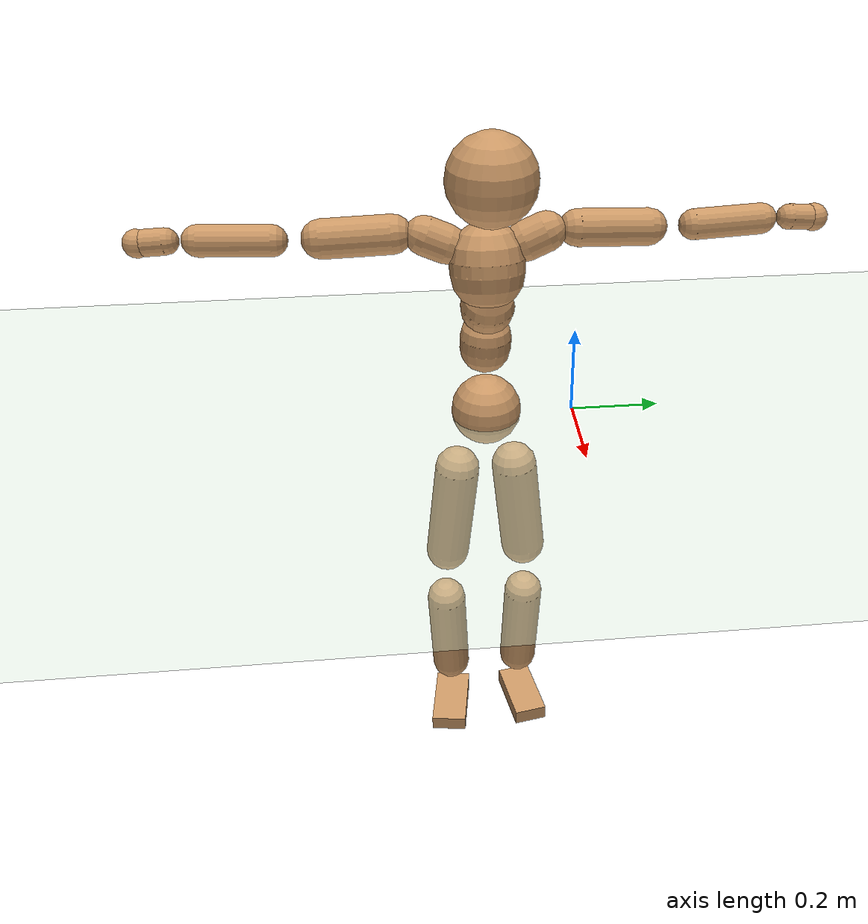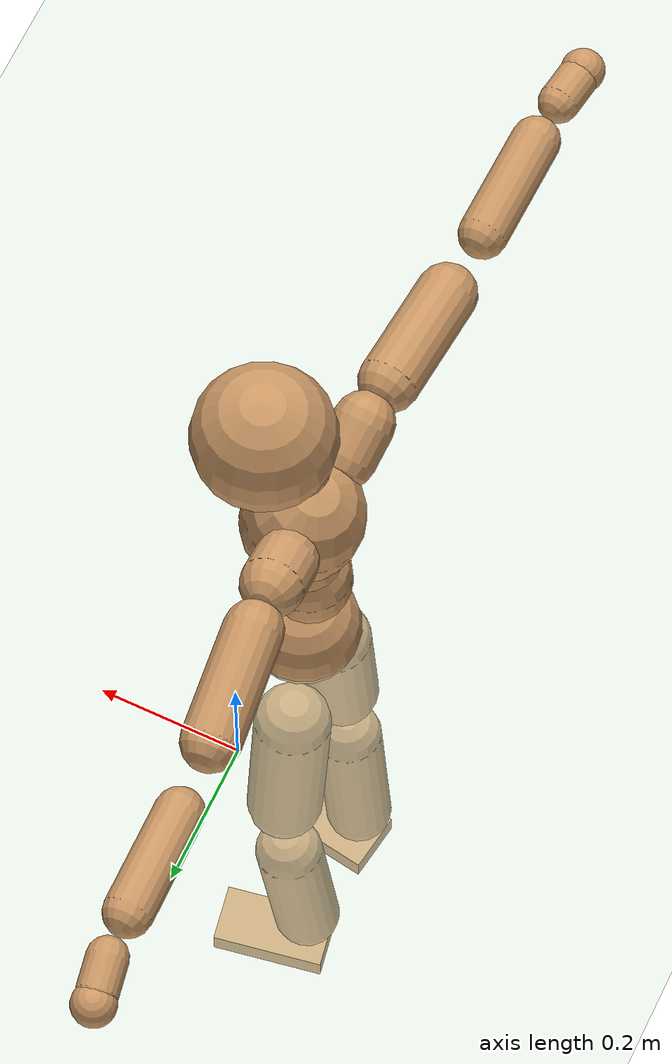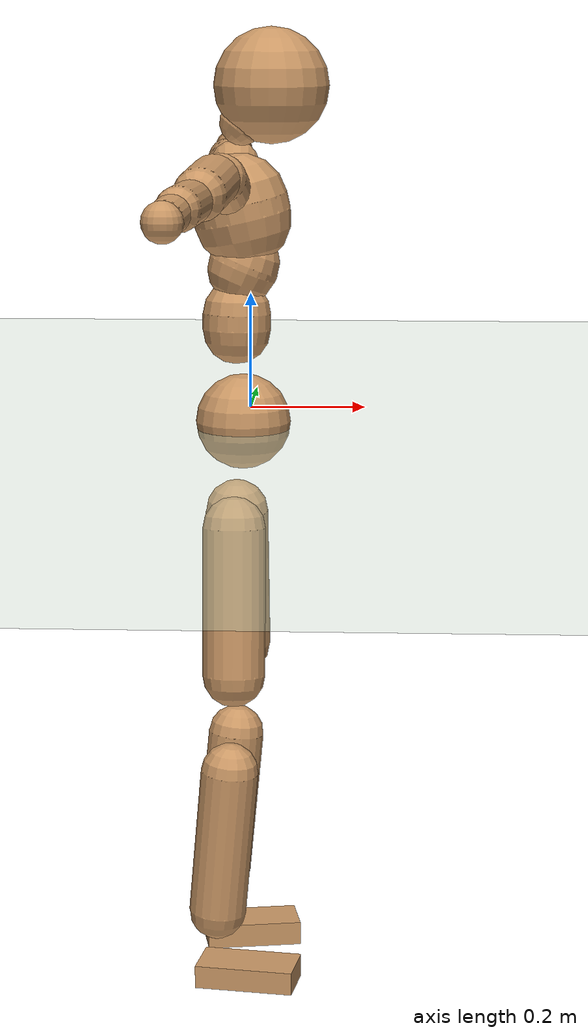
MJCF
<mujoco model="humanoid">
  <compiler coordinate="local" angle="radian"/>
  <default>
    <joint damping="0.0" armature="0.01" stiffness="0.0" limited="true"/>
    <geom conaffinity="1" condim="3" contype="7" margin="0.001" rgba="0.8 0.6 .4 1"/>
  </default>
  <asset>
    <texture type="skybox" builtin="gradient" rgb1=".4 .5 .6" rgb2="0 0 0" width="100" height="100"/>
    <texture builtin="flat" height="1278" mark="cross" markrgb="1 1 1" name="texgeom" random="0.01" rgb1="0.8 0.6 0.4" rgb2="0.8 0.6 0.4" type="cube" width="127"/>
    <texture builtin="checker" height="100" name="texplane" rgb1="0 0 0" rgb2="0.8 0.8 0.8" type="2d" width="100"/>
    <material name="MatPlane" reflectance="0.5" shininess="1" specular="1" texrepeat="60 60" texture="texplane"/>
    <material name="geom" texture="texgeom" texuniform="true"/>
  </asset>
  <worldbody>
    <light cutoff="100" diffuse="1 1 1" dir="-0 0 -1.3" directional="true" exponent="1" pos="0 0 1.3" specular=".1 .1 .1"/>
    <geom conaffinity="1" condim="3" name="floor" pos="0 0 0" rgba="0.8 0.9 0.8 1" size="100 100 .2" type="plane" material="MatPlane"/>
    <body name="Pelvis" pos="-0.0018 -0.1971 0.0104">
      <freejoint name="Pelvis"/>
      <geom type="sphere" contype="1" conaffinity="1" density="500" size="0.0795" pos="0.0000 0.0000 0.0000" name="Pelvis"/>
      <body name="L_Hip" pos="-0.0165 0.0604 -0.088">
        <joint name="L_Hip_x" type="hinge" pos="0 0 0" axis="1 0 0" stiffness="800" damping="80" armature="0.02" range="-180.0000 180.0000"/>
        <joint name="L_Hip_y" type="hinge" pos="0 0 0" axis="0 1 0" stiffness="800" damping="80" armature="0.02" range="-180.0000 180.0000"/>
        <joint name="L_Hip_z" type="hinge" pos="0 0 0" axis="0 0 1" stiffness="800" damping="80" armature="0.02" range="-180.0000 180.0000"/>
        <geom type="capsule" contype="1" conaffinity="1" density="500" fromto="0.0008 0.0084 -0.0808 0.0033 0.0334 -0.3233" size="0.0534" name="L_Hip"/>
        <body name="L_Knee" pos="0.0041 0.0418 -0.4041">
          <joint name="L_Knee_x" type="hinge" pos="0 0 0" axis="1 0 0" stiffness="800" damping="80" armature="0.02" range="-180.0000 180.0000"/>
          <joint name="L_Knee_y" type="hinge" pos="0 0 0" axis="0 1 0" stiffness="800" damping="80" armature="0.02" range="-180.0000 180.0000"/>
          <joint name="L_Knee_z" type="hinge" pos="0 0 0" axis="0 0 1" stiffness="800" damping="80" armature="0.02" range="-180.0000 180.0000"/>
          <geom type="capsule" contype="1" conaffinity="1" density="500" fromto="-0.0079 -0.0024 -0.0843 -0.0316 -0.0097 -0.3372" size="0.0481" name="L_Knee"/>
          <body name="L_Ankle" pos="-0.0395 -0.0122 -0.4215">
            <joint name="L_Ankle_x" type="hinge" pos="0 0 0" axis="1 0 0" stiffness="800" damping="80" armature="0.02" range="-180.0000 180.0000"/>
            <joint name="L_Ankle_y" type="hinge" pos="0 0 0" axis="0 1 0" stiffness="800" damping="80" armature="0.02" range="-180.0000 180.0000"/>
            <joint name="L_Ankle_z" type="hinge" pos="0 0 0" axis="0 0 1" stiffness="800" damping="80" armature="0.02" range="-180.0000 180.0000"/>
            <geom type="box" contype="1" conaffinity="1" density="500" pos="0.0587 0.0104 -0.0290" size="0.082 0.0416 0.0204" quat="0.9961 0.0000 0.0000 0.0880" name="L_Ankle"/>
            <body name="L_Toe" pos="0.1173 0.0209 -0.058">
              <joint name="L_Toe_x" type="hinge" pos="0 0 0" axis="1 0 0" stiffness="500" damping="50" armature="0.02" range="-180.0000 180.0000"/>
              <joint name="L_Toe_y" type="hinge" pos="0 0 0" axis="0 1 0" stiffness="500" damping="50" armature="0.02" range="-180.0000 180.0000"/>
              <joint name="L_Toe_z" type="hinge" pos="0 0 0" axis="0 0 1" stiffness="500" damping="50" armature="0.02" range="-180.0000 180.0000"/>
              <geom type="box" contype="1" conaffinity="1" density="500" pos="0.0000 0.0000 0.0295" size="0.0008 0.0021 0.001" quat="0.9955 0.0000 0.0000 0.0946" name="L_Toe"/>
            </body>
          </body>
        </body>
      </body>
      <body name="R_Hip" pos="-0.0122 -0.0582 -0.0863">
        <joint name="R_Hip_x" type="hinge" pos="0 0 0" axis="1 0 0" stiffness="800" damping="80" armature="0.02" range="-180.0000 180.0000"/>
        <joint name="R_Hip_y" type="hinge" pos="0 0 0" axis="0 1 0" stiffness="800" damping="80" armature="0.02" range="-180.0000 180.0000"/>
        <joint name="R_Hip_z" type="hinge" pos="0 0 0" axis="0 0 1" stiffness="800" damping="80" armature="0.02" range="-180.0000 180.0000"/>
        <geom type="capsule" contype="1" conaffinity="1" density="500" fromto="0.0001 -0.0093 -0.0825 0.0005 -0.0370 -0.3302" size="0.0525" name="R_Hip"/>
        <body name="R_Knee" pos="0.0006 -0.0463 -0.4127">
          <joint name="R_Knee_x" type="hinge" pos="0 0 0" axis="1 0 0" stiffness="800" damping="80" armature="0.02" range="-180.0000 180.0000"/>
          <joint name="R_Knee_y" type="hinge" pos="0 0 0" axis="0 1 0" stiffness="800" damping="80" armature="0.02" range="-180.0000 180.0000"/>
          <joint name="R_Knee_z" type="hinge" pos="0 0 0" axis="0 0 1" stiffness="800" damping="80" armature="0.02" range="-180.0000 180.0000"/>
          <geom type="capsule" contype="1" conaffinity="1" density="500" fromto="-0.0074 0.0033 -0.0842 -0.0295 0.0131 -0.3366" size="0.0485" name="R_Knee"/>
          <body name="R_Ankle" pos="-0.0369 0.0164 -0.4208">
            <joint name="R_Ankle_x" type="hinge" pos="0 0 0" axis="1 0 0" stiffness="800" damping="80" armature="0.02" range="-180.0000 180.0000"/>
            <joint name="R_Ankle_y" type="hinge" pos="0 0 0" axis="0 1 0" stiffness="800" damping="80" armature="0.02" range="-180.0000 180.0000"/>
            <joint name="R_Ankle_z" type="hinge" pos="0 0 0" axis="0 0 1" stiffness="800" damping="80" armature="0.02" range="-180.0000 180.0000"/>
            <geom type="box" contype="1" conaffinity="1" density="500" pos="0.0599 -0.0091 -0.0241" size="0.0839 0.0443 0.0195" quat="0.9971 0.0000 0.0000 -0.0754" name="R_Ankle"/>
            <body name="R_Toe" pos="0.1198 -0.0182 -0.0481">
              <joint name="R_Toe_x" type="hinge" pos="0 0 0" axis="1 0 0" stiffness="500" damping="50" armature="0.02" range="-180.0000 180.0000"/>
              <joint name="R_Toe_y" type="hinge" pos="0 0 0" axis="0 1 0" stiffness="500" damping="50" armature="0.02" range="-180.0000 180.0000"/>
              <joint name="R_Toe_z" type="hinge" pos="0 0 0" axis="0 0 1" stiffness="500" damping="50" armature="0.02" range="-180.0000 180.0000"/>
              <geom type="box" contype="1" conaffinity="1" density="500" pos="0.0000 0.0000 0.0268" size="0.0008 0.0021 0.0011" quat="0.9978 0.0000 0.0000 -0.0662" name="R_Toe"/>
            </body>
          </body>
        </body>
      </body>
      <body name="Torso" pos="-0.0112 -0.0032 0.1">
        <joint name="Torso_x" type="hinge" pos="0 0 0" axis="1 0 0" stiffness="1000" damping="100" armature="0.02" range="-180.0000 180.0000"/>
        <joint name="Torso_y" type="hinge" pos="0 0 0" axis="0 1 0" stiffness="1000" damping="100" armature="0.02" range="-180.0000 180.0000"/>
        <joint name="Torso_z" type="hinge" pos="0 0 0" axis="0 0 1" stiffness="1000" damping="100" armature="0.02" range="-180.0000 180.0000"/>
        <geom type="capsule" contype="1" conaffinity="1" density="500" fromto="0.0011 0.0028 0.0814 0.0007 0.0019 0.0543" size="0.0568" name="Torso"/>
        <body name="Spine" pos="0.0018 0.0047 0.1357">
          <joint name="Spine_x" type="hinge" pos="0 0 0" axis="1 0 0" stiffness="1000" damping="100" armature="0.02" range="-180.0000 180.0000"/>
          <joint name="Spine_y" type="hinge" pos="0 0 0" axis="0 1 0" stiffness="1000" damping="100" armature="0.02" range="-180.0000 180.0000"/>
          <joint name="Spine_z" type="hinge" pos="0 0 0" axis="0 0 1" stiffness="1000" damping="100" armature="0.02" range="-180.0000 180.0000"/>
          <geom type="capsule" contype="1" conaffinity="1" density="500" fromto="0.0128 0.0012 0.0296 0.0086 0.0008 0.0197" size="0.0586" name="Spine"/>
          <body name="Chest" pos="0.0214 0.0019 0.0493">
            <joint name="Chest_x" type="hinge" pos="0 0 0" axis="1 0 0" stiffness="1000" damping="100" armature="0.02" range="-180.0000 180.0000"/>
            <joint name="Chest_y" type="hinge" pos="0 0 0" axis="0 1 0" stiffness="1000" damping="100" armature="0.02" range="-180.0000 180.0000"/>
            <joint name="Chest_z" type="hinge" pos="0 0 0" axis="0 0 1" stiffness="1000" damping="100" armature="0.02" range="-180.0000 180.0000"/>
            <geom type="capsule" contype="1" conaffinity="1" density="500" fromto="-0.0179 -0.0014 0.0807 -0.0119 -0.0010 0.0538" size="0.0809" name="Chest"/>
            <body name="Neck" pos="-0.0248 -0.0046 0.195">
              <joint name="Neck_x" type="hinge" pos="0 0 0" axis="1 0 0" stiffness="500" damping="50" armature="0.02" range="-180.0000 180.0000"/>
              <joint name="Neck_y" type="hinge" pos="0 0 0" axis="0 1 0" stiffness="500" damping="50" armature="0.02" range="-180.0000 180.0000"/>
              <joint name="Neck_z" type="hinge" pos="0 0 0" axis="0 0 1" stiffness="500" damping="50" armature="0.02" range="-180.0000 180.0000"/>
              <geom type="capsule" contype="1" conaffinity="1" density="500" fromto="0.0120 0.0014 0.0151 0.0480 0.0056 0.0603" size="0.0372" name="Neck"/>
              <body name="Head" pos="0.06 0.007 0.0753">
                <joint name="Head_x" type="hinge" pos="0 0 0" axis="1 0 0" stiffness="500" damping="50" armature="0.02" range="-180.0000 180.0000"/>
                <joint name="Head_y" type="hinge" pos="0 0 0" axis="0 1 0" stiffness="500" damping="50" armature="0.02" range="-180.0000 180.0000"/>
                <joint name="Head_z" type="hinge" pos="0 0 0" axis="0 0 1" stiffness="500" damping="50" armature="0.02" range="-180.0000 180.0000"/>
                <geom type="sphere" contype="1" conaffinity="1" density="500" size="0.0951" pos="0.0000 0.0000 0.0000" name="Head"/>
              </body>
            </body>
            <body name="L_Thorax" pos="-0.03 0.0655 0.1053">
              <joint name="L_Thorax_x" type="hinge" pos="0 0 0" axis="1 0 0" stiffness="500" damping="50" armature="0.02" range="-180.0000 180.0000"/>
              <joint name="L_Thorax_y" type="hinge" pos="0 0 0" axis="0 1 0" stiffness="500" damping="50" armature="0.02" range="-180.0000 180.0000"/>
              <joint name="L_Thorax_z" type="hinge" pos="0 0 0" axis="0 0 1" stiffness="500" damping="50" armature="0.02" range="-180.0000 180.0000"/>
              <geom type="capsule" contype="1" conaffinity="1" density="500" fromto="-0.0007 0.0147 0.0063 -0.0030 0.0589 0.0252" size="0.0428" name="L_Thorax"/>
              <body name="L_Shoulder" pos="-0.0037 0.0736 0.0315">
                <joint name="L_Shoulder_x" type="hinge" pos="0 0 0" axis="1 0 0" stiffness="500" damping="50" armature="0.02" range="-720.0000 720.0000"/>
                <joint name="L_Shoulder_y" type="hinge" pos="0 0 0" axis="0 1 0" stiffness="500" damping="50" armature="0.02" range="-720.0000 720.0000"/>
                <joint name="L_Shoulder_z" type="hinge" pos="0 0 0" axis="0 0 1" stiffness="500" damping="50" armature="0.02" range="-720.0000 720.0000"/>
                <geom type="capsule" contype="1" conaffinity="1" density="500" fromto="-0.0053 0.0519 -0.0036 -0.0212 0.2076 -0.0143" size="0.0397" name="L_Shoulder"/>
                <body name="L_Elbow" pos="-0.0265 0.2594 -0.0179">
                  <joint name="L_Elbow_x" type="hinge" pos="0 0 0" axis="1 0 0" stiffness="500" damping="50" armature="0.02" range="-720.0000 720.0000"/>
                  <joint name="L_Elbow_y" type="hinge" pos="0 0 0" axis="0 1 0" stiffness="500" damping="50" armature="0.02" range="-720.0000 720.0000"/>
                  <joint name="L_Elbow_z" type="hinge" pos="0 0 0" axis="0 0 1" stiffness="500" damping="50" armature="0.02" range="-720.0000 720.0000"/>
                  <geom type="capsule" contype="1" conaffinity="1" density="500" fromto="-0.0007 0.0488 0.0021 -0.0030 0.1952 0.0084" size="0.033" name="L_Elbow"/>
                  <body name="L_Wrist" pos="-0.0037 0.2439 0.0105">
                    <joint name="L_Wrist_x" type="hinge" pos="0 0 0" axis="1 0 0" stiffness="300" damping="30" armature="0.02" range="-180.0000 180.0000"/>
                    <joint name="L_Wrist_y" type="hinge" pos="0 0 0" axis="0 1 0" stiffness="300" damping="30" armature="0.02" range="-180.0000 180.0000"/>
                    <joint name="L_Wrist_z" type="hinge" pos="0 0 0" axis="0 0 1" stiffness="300" damping="30" armature="0.02" range="-180.0000 180.0000"/>
                    <geom type="capsule" contype="1" conaffinity="1" density="500" fromto="-0.0026 0.0148 -0.0019 -0.0103 0.0593 -0.0075" size="0.0274" name="L_Wrist"/>
                    <body name="L_Hand" pos="-0.0129 0.0741 -0.0093">
                      <joint name="L_Hand_x" type="hinge" pos="0 0 0" axis="1 0 0" stiffness="300" damping="30" armature="0.02" range="-180.0000 180.0000"/>
                      <joint name="L_Hand_y" type="hinge" pos="0 0 0" axis="0 1 0" stiffness="300" damping="30" armature="0.02" range="-180.0000 180.0000"/>
                      <joint name="L_Hand_z" type="hinge" pos="0 0 0" axis="0 0 1" stiffness="300" damping="30" armature="0.02" range="-180.0000 180.0000"/>
                      <geom type="sphere" contype="1" conaffinity="1" density="500" size="0.0298" pos="0.0000 0.0000 0.0000" name="L_Hand"/>
                    </body>
                  </body>
                </body>
              </body>
            </body>
            <body name="R_Thorax" pos="-0.0346 -0.0681 0.1032">
              <joint name="R_Thorax_x" type="hinge" pos="0 0 0" axis="1 0 0" stiffness="500" damping="50" armature="0.02" range="-180.0000 180.0000"/>
              <joint name="R_Thorax_y" type="hinge" pos="0 0 0" axis="0 1 0" stiffness="500" damping="50" armature="0.02" range="-180.0000 180.0000"/>
              <joint name="R_Thorax_z" type="hinge" pos="0 0 0" axis="0 0 1" stiffness="500" damping="50" armature="0.02" range="-180.0000 180.0000"/>
              <geom type="capsule" contype="1" conaffinity="1" density="500" fromto="-0.0013 -0.0155 0.0064 -0.0053 -0.0619 0.0257" size="0.0418" name="R_Thorax"/>
              <body name="R_Shoulder" pos="-0.0067 -0.0773 0.0322">
                <joint name="R_Shoulder_x" type="hinge" pos="0 0 0" axis="1 0 0" stiffness="500" damping="50" armature="0.02" range="-720.0000 720.0000"/>
                <joint name="R_Shoulder_y" type="hinge" pos="0 0 0" axis="0 1 0" stiffness="500" damping="50" armature="0.02" range="-720.0000 720.0000"/>
                <joint name="R_Shoulder_z" type="hinge" pos="0 0 0" axis="0 0 1" stiffness="500" damping="50" armature="0.02" range="-720.0000 720.0000"/>
                <geom type="capsule" contype="1" conaffinity="1" density="500" fromto="-0.0039 -0.0497 -0.0030 -0.0155 -0.1990 -0.0122" size="0.0415" name="R_Shoulder"/>
                <body name="R_Elbow" pos="-0.0194 -0.2487 -0.0152">
                  <joint name="R_Elbow_x" type="hinge" pos="0 0 0" axis="1 0 0" stiffness="500" damping="50" armature="0.02" range="-720.0000 720.0000"/>
                  <joint name="R_Elbow_y" type="hinge" pos="0 0 0" axis="0 1 0" stiffness="500" damping="50" armature="0.02" range="-720.0000 720.0000"/>
                  <joint name="R_Elbow_z" type="hinge" pos="0 0 0" axis="0 0 1" stiffness="500" damping="50" armature="0.02" range="-720.0000 720.0000"/>
                  <geom type="capsule" contype="1" conaffinity="1" density="500" fromto="-0.0018 -0.0506 0.0013 -0.0071 -0.2022 0.0053" size="0.0335" name="R_Elbow"/>
                  <body name="R_Wrist" pos="-0.0089 -0.2528 0.0066">
                    <joint name="R_Wrist_x" type="hinge" pos="0 0 0" axis="1 0 0" stiffness="300" damping="30" armature="0.02" range="-180.0000 180.0000"/>
                    <joint name="R_Wrist_y" type="hinge" pos="0 0 0" axis="0 1 0" stiffness="300" damping="30" armature="0.02" range="-180.0000 180.0000"/>
                    <joint name="R_Wrist_z" type="hinge" pos="0 0 0" axis="0 0 1" stiffness="300" damping="30" armature="0.02" range="-180.0000 180.0000"/>
                    <geom type="capsule" contype="1" conaffinity="1" density="500" fromto="-0.0019 -0.0149 -0.0014 -0.0076 -0.0597 -0.0054" size="0.0282" name="R_Wrist"/>
                    <body name="R_Hand" pos="-0.0094 -0.0746 -0.0068">
                      <joint name="R_Hand_x" type="hinge" pos="0 0 0" axis="1 0 0" stiffness="300" damping="30" armature="0.02" range="-180.0000 180.0000"/>
                      <joint name="R_Hand_y" type="hinge" pos="0 0 0" axis="0 1 0" stiffness="300" damping="30" armature="0.02" range="-180.0000 180.0000"/>
                      <joint name="R_Hand_z" type="hinge" pos="0 0 0" axis="0 0 1" stiffness="300" damping="30" armature="0.02" range="-180.0000 180.0000"/>
                      <geom type="sphere" contype="1" conaffinity="1" density="500" size="0.0299" pos="0.0000 0.0000 0.0000" name="R_Hand"/>
                    </body>
                  </body>
                </body>
              </body>
            </body>
          </body>
        </body>
      </body>
    </body>
  </worldbody>
  <actuator>
    <motor name="L_Hip_x" joint="L_Hip_x" gear="500"/>
    <motor name="L_Hip_y" joint="L_Hip_y" gear="500"/>
    <motor name="L_Hip_z" joint="L_Hip_z" gear="500"/>
    <motor name="L_Knee_x" joint="L_Knee_x" gear="500"/>
    <motor name="L_Knee_y" joint="L_Knee_y" gear="500"/>
    <motor name="L_Knee_z" joint="L_Knee_z" gear="500"/>
    <motor name="L_Ankle_x" joint="L_Ankle_x" gear="500"/>
    <motor name="L_Ankle_y" joint="L_Ankle_y" gear="500"/>
    <motor name="L_Ankle_z" joint="L_Ankle_z" gear="500"/>
    <motor name="L_Toe_x" joint="L_Toe_x" gear="500"/>
    <motor name="L_Toe_y" joint="L_Toe_y" gear="500"/>
    <motor name="L_Toe_z" joint="L_Toe_z" gear="500"/>
    <motor name="R_Hip_x" joint="R_Hip_x" gear="500"/>
    <motor name="R_Hip_y" joint="R_Hip_y" gear="500"/>
    <motor name="R_Hip_z" joint="R_Hip_z" gear="500"/>
    <motor name="R_Knee_x" joint="R_Knee_x" gear="500"/>
    <motor name="R_Knee_y" joint="R_Knee_y" gear="500"/>
    <motor name="R_Knee_z" joint="R_Knee_z" gear="500"/>
    <motor name="R_Ankle_x" joint="R_Ankle_x" gear="500"/>
    <motor name="R_Ankle_y" joint="R_Ankle_y" gear="500"/>
    <motor name="R_Ankle_z" joint="R_Ankle_z" gear="500"/>
    <motor name="R_Toe_x" joint="R_Toe_x" gear="500"/>
    <motor name="R_Toe_y" joint="R_Toe_y" gear="500"/>
    <motor name="R_Toe_z" joint="R_Toe_z" gear="500"/>
    <motor name="Torso_x" joint="Torso_x" gear="500"/>
    <motor name="Torso_y" joint="Torso_y" gear="500"/>
    <motor name="Torso_z" joint="Torso_z" gear="500"/>
    <motor name="Spine_x" joint="Spine_x" gear="500"/>
    <motor name="Spine_y" joint="Spine_y" gear="500"/>
    <motor name="Spine_z" joint="Spine_z" gear="500"/>
    <motor name="Chest_x" joint="Chest_x" gear="500"/>
    <motor name="Chest_y" joint="Chest_y" gear="500"/>
    <motor name="Chest_z" joint="Chest_z" gear="500"/>
    <motor name="Neck_x" joint="Neck_x" gear="500"/>
    <motor name="Neck_y" joint="Neck_y" gear="500"/>
    <motor name="Neck_z" joint="Neck_z" gear="500"/>
    <motor name="Head_x" joint="Head_x" gear="500"/>
    <motor name="Head_y" joint="Head_y" gear="500"/>
    <motor name="Head_z" joint="Head_z" gear="500"/>
    <motor name="L_Thorax_x" joint="L_Thorax_x" gear="500"/>
    <motor name="L_Thorax_y" joint="L_Thorax_y" gear="500"/>
    <motor name="L_Thorax_z" joint="L_Thorax_z" gear="500"/>
    <motor name="L_Shoulder_x" joint="L_Shoulder_x" gear="500"/>
    <motor name="L_Shoulder_y" joint="L_Shoulder_y" gear="500"/>
    <motor name="L_Shoulder_z" joint="L_Shoulder_z" gear="500"/>
    <motor name="L_Elbow_x" joint="L_Elbow_x" gear="500"/>
    <motor name="L_Elbow_y" joint="L_Elbow_y" gear="500"/>
    <motor name="L_Elbow_z" joint="L_Elbow_z" gear="500"/>
    <motor name="L_Wrist_x" joint="L_Wrist_x" gear="500"/>
    <motor name="L_Wrist_y" joint="L_Wrist_y" gear="500"/>
    <motor name="L_Wrist_z" joint="L_Wrist_z" gear="500"/>
    <motor name="L_Hand_x" joint="L_Hand_x" gear="500"/>
    <motor name="L_Hand_y" joint="L_Hand_y" gear="500"/>
    <motor name="L_Hand_z" joint="L_Hand_z" gear="500"/>
    <motor name="R_Thorax_x" joint="R_Thorax_x" gear="500"/>
    <motor name="R_Thorax_y" joint="R_Thorax_y" gear="500"/>
    <motor name="R_Thorax_z" joint="R_Thorax_z" gear="500"/>
    <motor name="R_Shoulder_x" joint="R_Shoulder_x" gear="500"/>
    <motor name="R_Shoulder_y" joint="R_Shoulder_y" gear="500"/>
    <motor name="R_Shoulder_z" joint="R_Shoulder_z" gear="500"/>
    <motor name="R_Elbow_x" joint="R_Elbow_x" gear="500"/>
    <motor name="R_Elbow_y" joint="R_Elbow_y" gear="500"/>
    <motor name="R_Elbow_z" joint="R_Elbow_z" gear="500"/>
    <motor name="R_Wrist_x" joint="R_Wrist_x" gear="500"/>
    <motor name="R_Wrist_y" joint="R_Wrist_y" gear="500"/>
    <motor name="R_Wrist_z" joint="R_Wrist_z" gear="500"/>
    <motor name="R_Hand_x" joint="R_Hand_x" gear="500"/>
    <motor name="R_Hand_y" joint="R_Hand_y" gear="500"/>
    <motor name="R_Hand_z" joint="R_Hand_z" gear="500"/>
  </actuator>
  <contact>
    <exclude body1="Torso" body2="Chest"/>
    <exclude body1="Head" body2="Chest"/>
    <exclude body1="R_Knee" body2="R_Toe"/>
    <exclude body1="R_Knee" body2="L_Ankle"/>
    <exclude body1="R_Knee" body2="L_Toe"/>
    <exclude body1="L_Knee" body2="L_Toe"/>
    <exclude body1="L_Knee" body2="R_Ankle"/>
    <exclude body1="L_Knee" body2="R_Toe"/>
    <exclude body1="L_Shoulder" body2="Chest"/>
    <exclude body1="R_Shoulder" body2="Chest"/>
  </contact>
  <sensor/>
  <size njmax="700" nconmax="700"/>
</mujoco>
